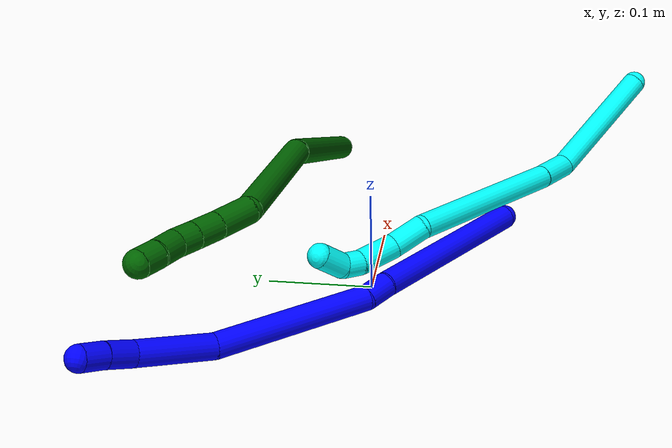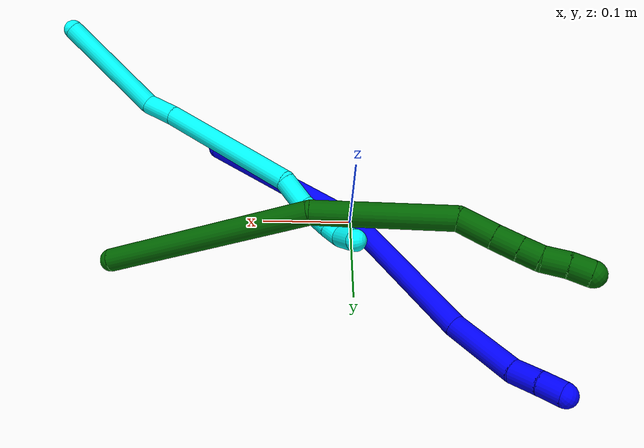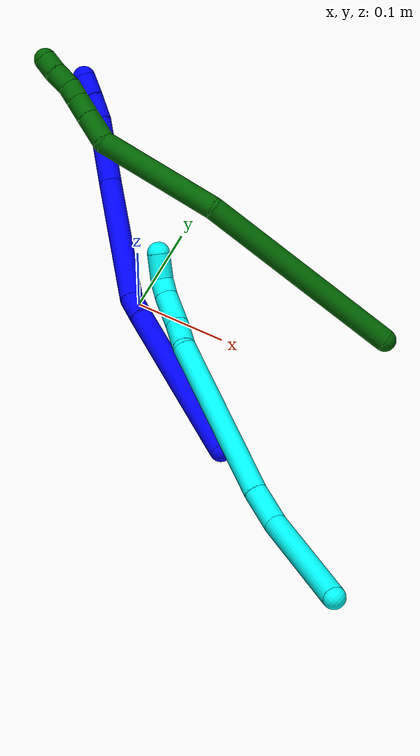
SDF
<sdf version="1.7">
 <world name="default">
  <model name="photoneo_s_sensor">
   <static>1</static>
   <pose>0 0 2 1.57079 1.57079 3.14159</pose>
   <link name="link">
    <inertial><mass>0.1</mass></inertial>
    <sensor name="sensor" type="depth">
     <update_rate>30</update_rate>
     <camera>
      <horizontal_fov>1.22</horizontal_fov>
      <image><width>1920</width><height>1200</height><format>B8G8R8</format></image>
      <clip><near>0.1</near><far>4</far></clip>
      <depth_camera><output>points</output></depth_camera>
     </camera>
     <plugin name="camera_plugin" filename="libgazebo_ros_depth_camera.so">
      <baseline>0.2</baseline>
      <alwaysOn>1</alwaysOn>
      <updateRate>0.0</updateRate>
      <cameraName>camera_ir</cameraName>
      <imageTopicName>/camera/color/image_raw</imageTopicName>
      <cameraInfoTopicName>/camera/color/camera_info</cameraInfoTopicName>
      <depthImageTopicName>/camera/depth/image_raw</depthImageTopicName>
      <depthImageCameraInfoTopicName>/camera/depth/camera_info</depthImageCameraInfoTopicName>
      <pointCloudTopicName>/camera/depth/points</pointCloudTopicName>
      <frameName>fr_optical</frameName>
      <pointCloudCutoff>0.1</pointCloudCutoff>
      <pointCloudCutoffMax>2.0</pointCloudCutoffMax>
      <distortionK1>0</distortionK1>
      <distortionK2>0</distortionK2>
      <distortionK3>0</distortionK3>
      <distortionT1>0</distortionT1>
      <distortionT2>0</distortionT2>
      <CxPrime>0</CxPrime>
      <Cx>0</Cx>
      <Cy>0</Cy>
      <focalLength>0</focalLength>
      <hackBaseline>0</hackBaseline>
     </plugin>
    </sensor>
   </link>
  </model>
  <model name="bin">
   <static>1</static>
   <link name="bottom">
    <collision name="collision-bottom">
     <pose>0 0 -0.01 0 -0 0</pose>
     <geometry><box><size>0.8 0.6 0.02</size></box></geometry>
     <surface>
      <friction><ode><mu>100</mu><mu2>100</mu2></ode></friction>
      <contact><collide_bitmask>65535</collide_bitmask></contact>
     </surface>
    </collision>
   </link>
   <link name="west_wall">
    <collision name="collision-west_wall">
     <pose>-0.41 0 0.1 0 -0 0</pose>
     <geometry><box><size>0.02 0.6 0.2</size></box></geometry>
     <surface>
      <friction><ode><mu>100</mu><mu2>100</mu2></ode></friction>
      <contact><collide_bitmask>65535</collide_bitmask></contact>
     </surface>
    </collision>
   </link>
   <link name="east_wall">
    <collision name="collision-east_wall">
     <pose>0.41 0 0.1 0 -0 0</pose>
     <geometry><box><size>0.02 0.6 0.2</size></box></geometry>
     <surface>
      <friction><ode><mu>100</mu><mu2>100</mu2></ode></friction>
      <contact><collide_bitmask>65535</collide_bitmask></contact>
     </surface>
    </collision>
   </link>
   <link name="south_wall">
    <collision name="collision-south_wall">
     <pose>0 -0.31 0.1 0 -0 0</pose>
     <geometry><box><size>0.8 0.02 0.2</size></box></geometry>
     <surface>
      <friction><ode><mu>100</mu><mu2>100</mu2></ode></friction>
      <contact><collide_bitmask>65535</collide_bitmask></contact>
     </surface>
    </collision>
   </link>
   <link name="north_wall">
    <collision name="collision-north_wall">
     <pose>0 0.31 0.1 0 -0 0</pose>
     <geometry><box><size>0.8 0.02 0.2</size></box></geometry>
     <surface>
      <friction><ode><mu>100</mu><mu2>100</mu2></ode></friction>
      <contact><collide_bitmask>65535</collide_bitmask></contact>
     </surface>
    </collision>
   </link>
  </model>
  <model name="1">
   <static>0</static>
   <link name="1">
    <collision name="collision-cylinder-e_1_1_4">
     <pose>-0.055642 0.040038 -0.063313 -2.57771 -0.638863 1.70309</pose>
     <geometry><cylinder><radius>0.0125</radius><length>0.186628</length></cylinder></geometry>
     <surface>
      <friction><ode><mu>1.16</mu><mu2>1.16</mu2><slip1>0</slip1><slip2>0</slip2></ode></friction>
      <contact><ode><kp>1e+06</kp><kd>1</kd><max_vel>0</max_vel><min_depth>0.001</min_depth></ode></contact>
     </surface>
    </collision>
    <visual name="visual-cylinder-e_1_1_4">
     <pose>-0.055642 0.040038 -0.063313 -2.57771 -0.638863 1.70309</pose>
     <geometry><cylinder><radius>0.0125</radius><length>0.186628</length></cylinder></geometry>
     <material><ambient>0 0 1 1</ambient></material>
    </visual>
    <collision name="collision-cylinder-e_2_4_5">
     <pose>-0.117568 0.086793 -0.136397 -2.53925 -0.487395 1.35005</pose>
     <geometry><cylinder><radius>0.0125</radius><length>0.026841</length></cylinder></geometry>
     <surface>
      <friction><ode><mu>1.16</mu><mu2>1.16</mu2><slip1>0</slip1><slip2>0</slip2></ode></friction>
      <contact><ode><kp>1e+06</kp><kd>1</kd><max_vel>0</max_vel><min_depth>0.001</min_depth></ode></contact>
     </surface>
    </collision>
    <visual name="visual-cylinder-e_2_4_5">
     <pose>-0.117568 0.086793 -0.136397 -2.53925 -0.487395 1.35005</pose>
     <geometry><cylinder><radius>0.0125</radius><length>0.026841</length></cylinder></geometry>
     <material><ambient>0 0 1 1</ambient></material>
    </visual>
    <collision name="collision-cylinder-e_3_5_6">
     <pose>-0.162953 0.147349 -0.187158 -2.22154 -0.523967 0.992094</pose>
     <geometry><cylinder><radius>0.0125</radius><length>0.1563</length></cylinder></geometry>
     <surface>
      <friction><ode><mu>1.16</mu><mu2>1.16</mu2><slip1>0</slip1><slip2>0</slip2></ode></friction>
      <contact><ode><kp>1e+06</kp><kd>1</kd><max_vel>0</max_vel><min_depth>0.001</min_depth></ode></contact>
     </surface>
    </collision>
    <visual name="visual-cylinder-e_3_5_6">
     <pose>-0.162953 0.147349 -0.187158 -2.22154 -0.523967 0.992094</pose>
     <geometry><cylinder><radius>0.0125</radius><length>0.1563</length></cylinder></geometry>
     <material><ambient>0 0 1 1</ambient></material>
    </visual>
    <collision name="collision-cylinder-e_4_6_7">
     <pose>-0.228575 0.225298 -0.242267 -2.10053 -0.759324 1.21613</pose>
     <geometry><cylinder><radius>0.0125</radius><length>0.077049</length></cylinder></geometry>
     <surface>
      <friction><ode><mu>1.16</mu><mu2>1.16</mu2><slip1>0</slip1><slip2>0</slip2></ode></friction>
      <contact><ode><kp>1e+06</kp><kd>1</kd><max_vel>0</max_vel><min_depth>0.001</min_depth></ode></contact>
     </surface>
    </collision>
    <visual name="visual-cylinder-e_4_6_7">
     <pose>-0.228575 0.225298 -0.242267 -2.10053 -0.759324 1.21613</pose>
     <geometry><cylinder><radius>0.0125</radius><length>0.077049</length></cylinder></geometry>
     <material><ambient>0 0 1 1</ambient></material>
    </visual>
    <collision name="collision-cylinder-e_5_7_8">
     <pose>-0.267094 0.255654 -0.261637 -2.2701 -0.973602 1.69867</pose>
     <geometry><cylinder><radius>0.0125</radius><length>0.029018</length></cylinder></geometry>
     <surface>
      <friction><ode><mu>1.16</mu><mu2>1.16</mu2><slip1>0</slip1><slip2>0</slip2></ode></friction>
      <contact><ode><kp>1e+06</kp><kd>1</kd><max_vel>0</max_vel><min_depth>0.001</min_depth></ode></contact>
     </surface>
    </collision>
    <visual name="visual-cylinder-e_5_7_8">
     <pose>-0.267094 0.255654 -0.261637 -2.2701 -0.973602 1.69867</pose>
     <geometry><cylinder><radius>0.0125</radius><length>0.029018</length></cylinder></geometry>
     <material><ambient>0 0 1 1</ambient></material>
    </visual>
    <collision name="collision-cylinder-e_6_8_2">
     <pose>-0.28866 0.267225 -0.271994 -2.33487 -0.913916 1.7119</pose>
     <geometry><cylinder><radius>0.0125</radius><length>0.024164</length></cylinder></geometry>
     <surface>
      <friction><ode><mu>1.16</mu><mu2>1.16</mu2><slip1>0</slip1><slip2>0</slip2></ode></friction>
      <contact><ode><kp>1e+06</kp><kd>1</kd><max_vel>0</max_vel><min_depth>0.001</min_depth></ode></contact>
     </surface>
    </collision>
    <visual name="visual-cylinder-e_6_8_2">
     <pose>-0.28866 0.267225 -0.271994 -2.33487 -0.913916 1.7119</pose>
     <geometry><cylinder><radius>0.0125</radius><length>0.024164</length></cylinder></geometry>
     <material><ambient>0 0 1 1</ambient></material>
    </visual>
    <collision name="collision-sphere-2">
     <pose>-0.298227 0.272552 -0.277098 0 -0 0</pose>
     <geometry><sphere><radius>0.0125</radius></sphere></geometry>
     <surface>
      <friction><ode><mu>1.16</mu><mu2>1.16</mu2><slip1>0</slip1><slip2>0</slip2></ode></friction>
      <contact><ode><kp>1e+06</kp><kd>1</kd><max_vel>0</max_vel><min_depth>0.001</min_depth></ode></contact>
     </surface>
    </collision>
    <visual name="visual-sphere-2">
     <pose>-0.298227 0.272552 -0.277098 0 -0 0</pose>
     <geometry><sphere><radius>0.0125</radius></sphere></geometry>
     <material><ambient>0 0 1 1</ambient></material>
    </visual>
    <collision name="collision-sphere-4">
     <pose>-0.111283 0.080075 -0.126626 0 -0 0</pose>
     <geometry><sphere><radius>0.0125</radius></sphere></geometry>
     <surface>
      <friction><ode><mu>1.16</mu><mu2>1.16</mu2><slip1>0</slip1><slip2>0</slip2></ode></friction>
      <contact><ode><kp>1e+06</kp><kd>1</kd><max_vel>0</max_vel><min_depth>0.001</min_depth></ode></contact>
     </surface>
    </collision>
    <visual name="visual-sphere-4">
     <pose>-0.111283 0.080075 -0.126626 0 -0 0</pose>
     <geometry><sphere><radius>0.0125</radius></sphere></geometry>
     <material><ambient>0 0 1 1</ambient></material>
    </visual>
    <collision name="collision-sphere-1">
     <geometry><sphere><radius>0.0125</radius></sphere></geometry>
     <surface>
      <friction><ode><mu>1.16</mu><mu2>1.16</mu2><slip1>0</slip1><slip2>0</slip2></ode></friction>
      <contact><ode><kp>1e+06</kp><kd>1</kd><max_vel>0</max_vel><min_depth>0.001</min_depth></ode></contact>
     </surface>
    </collision>
    <visual name="visual-sphere-1">
     <geometry><sphere><radius>0.0125</radius></sphere></geometry>
     <material><ambient>0 0 1 1</ambient></material>
    </visual>
    <collision name="collision-sphere-8">
     <pose>-0.279092 0.261898 -0.266889 0 -0 0</pose>
     <geometry><sphere><radius>0.0125</radius></sphere></geometry>
     <surface>
      <friction><ode><mu>1.16</mu><mu2>1.16</mu2><slip1>0</slip1><slip2>0</slip2></ode></friction>
      <contact><ode><kp>1e+06</kp><kd>1</kd><max_vel>0</max_vel><min_depth>0.001</min_depth></ode></contact>
     </surface>
    </collision>
    <visual name="visual-sphere-8">
     <pose>-0.279092 0.261898 -0.266889 0 -0 0</pose>
     <geometry><sphere><radius>0.0125</radius></sphere></geometry>
     <material><ambient>0 0 1 1</ambient></material>
    </visual>
    <collision name="collision-sphere-5">
     <pose>-0.123854 0.093512 -0.146168 0 -0 0</pose>
     <geometry><sphere><radius>0.0125</radius></sphere></geometry>
     <surface>
      <friction><ode><mu>1.16</mu><mu2>1.16</mu2><slip1>0</slip1><slip2>0</slip2></ode></friction>
      <contact><ode><kp>1e+06</kp><kd>1</kd><max_vel>0</max_vel><min_depth>0.001</min_depth></ode></contact>
     </surface>
    </collision>
    <visual name="visual-sphere-5">
     <pose>-0.123854 0.093512 -0.146168 0 -0 0</pose>
     <geometry><sphere><radius>0.0125</radius></sphere></geometry>
     <material><ambient>0 0 1 1</ambient></material>
    </visual>
    <collision name="collision-sphere-6">
     <pose>-0.202053 0.201186 -0.228148 0 -0 0</pose>
     <geometry><sphere><radius>0.0125</radius></sphere></geometry>
     <surface>
      <friction><ode><mu>1.16</mu><mu2>1.16</mu2><slip1>0</slip1><slip2>0</slip2></ode></friction>
      <contact><ode><kp>1e+06</kp><kd>1</kd><max_vel>0</max_vel><min_depth>0.001</min_depth></ode></contact>
     </surface>
    </collision>
    <visual name="visual-sphere-6">
     <pose>-0.202053 0.201186 -0.228148 0 -0 0</pose>
     <geometry><sphere><radius>0.0125</radius></sphere></geometry>
     <material><ambient>0 0 1 1</ambient></material>
    </visual>
    <collision name="collision-sphere-7">
     <pose>-0.255096 0.24941 -0.256386 0 -0 0</pose>
     <geometry><sphere><radius>0.0125</radius></sphere></geometry>
     <surface>
      <friction><ode><mu>1.16</mu><mu2>1.16</mu2><slip1>0</slip1><slip2>0</slip2></ode></friction>
      <contact><ode><kp>1e+06</kp><kd>1</kd><max_vel>0</max_vel><min_depth>0.001</min_depth></ode></contact>
     </surface>
    </collision>
    <visual name="visual-sphere-7">
     <pose>-0.255096 0.24941 -0.256386 0 -0 0</pose>
     <geometry><sphere><radius>0.0125</radius></sphere></geometry>
     <material><ambient>0 0 1 1</ambient></material>
    </visual>
    <inertial>
     <pose>-0.142693 0.128134 -0.155122 0 -0 0</pose>
     <mass>0.5</mass>
     <inertia>
      <ixx>0.000788</ixx>
      <ixy>0</ixy>
      <ixz>0</ixz>
      <iyy>0.000981</iyy>
      <iyz>0</iyz>
      <izz>1.3e-05</izz>
     </inertia>
    </inertial>
   </link>
   <pose>0.161494 -0.120119 -0.005364 -0.249536 0.93156 -0.362237</pose>
  </model>
  <model name="3">
   <static>0</static>
   <link name="3">
    <collision name="collision-cylinder-e_1_1_4">
     <pose>0.045143 0.032458 -0.044565 -2.51211 0.68611 -1.66333</pose>
     <geometry><cylinder><radius>0.0125</radius><length>0.142513</length></cylinder></geometry>
     <surface>
      <friction><ode><mu>1.16</mu><mu2>1.16</mu2><slip1>0</slip1><slip2>0</slip2></ode></friction>
      <contact><ode><kp>1e+06</kp><kd>1</kd><max_vel>0</max_vel><min_depth>0.001</min_depth></ode></contact>
     </surface>
    </collision>
    <visual name="visual-cylinder-e_1_1_4">
     <pose>0.045143 0.032458 -0.044565 -2.51211 0.68611 -1.66333</pose>
     <geometry><cylinder><radius>0.0125</radius><length>0.142513</length></cylinder></geometry>
     <material><ambient>0.003922 1 0.996078 1</ambient></material>
    </visual>
    <collision name="collision-cylinder-e_2_4_5">
     <pose>0.095356 0.073518 -0.10804 -2.71467 0.239338 -1.01293</pose>
     <geometry><cylinder><radius>0.0125</radius><length>0.042767</length></cylinder></geometry>
     <surface>
      <friction><ode><mu>1.16</mu><mu2>1.16</mu2><slip1>0</slip1><slip2>0</slip2></ode></friction>
      <contact><ode><kp>1e+06</kp><kd>1</kd><max_vel>0</max_vel><min_depth>0.001</min_depth></ode></contact>
     </surface>
    </collision>
    <visual name="visual-cylinder-e_2_4_5">
     <pose>0.095356 0.073518 -0.10804 -2.71467 0.239338 -1.01293</pose>
     <geometry><cylinder><radius>0.0125</radius><length>0.042767</length></cylinder></geometry>
     <material><ambient>0.003922 1 0.996078 1</ambient></material>
    </visual>
    <collision name="collision-cylinder-e_3_5_6">
     <pose>0.119198 0.126822 -0.206965 -2.63212 0.202021 -0.742392</pose>
     <geometry><cylinder><radius>0.0125</radius><length>0.187118</length></cylinder></geometry>
     <surface>
      <friction><ode><mu>1.16</mu><mu2>1.16</mu2><slip1>0</slip1><slip2>0</slip2></ode></friction>
      <contact><ode><kp>1e+06</kp><kd>1</kd><max_vel>0</max_vel><min_depth>0.001</min_depth></ode></contact>
     </surface>
    </collision>
    <visual name="visual-cylinder-e_3_5_6">
     <pose>0.119198 0.126822 -0.206965 -2.63212 0.202021 -0.742392</pose>
     <geometry><cylinder><radius>0.0125</radius><length>0.187118</length></cylinder></geometry>
     <material><ambient>0.003922 1 0.996078 1</ambient></material>
    </visual>
    <collision name="collision-cylinder-e_4_6_7">
     <pose>0.146616 0.183367 -0.297833 -2.31256 0.49378 -1.04033</pose>
     <geometry><cylinder><radius>0.0125</radius><length>0.036484</length></cylinder></geometry>
     <surface>
      <friction><ode><mu>1.16</mu><mu2>1.16</mu2><slip1>0</slip1><slip2>0</slip2></ode></friction>
      <contact><ode><kp>1e+06</kp><kd>1</kd><max_vel>0</max_vel><min_depth>0.001</min_depth></ode></contact>
     </surface>
    </collision>
    <visual name="visual-cylinder-e_4_6_7">
     <pose>0.146616 0.183367 -0.297833 -2.31256 0.49378 -1.04033</pose>
     <geometry><cylinder><radius>0.0125</radius><length>0.036484</length></cylinder></geometry>
     <material><ambient>0.003922 1 0.996078 1</ambient></material>
    </visual>
    <collision name="collision-cylinder-e_5_7_8">
     <pose>0.161739 0.207269 -0.324064 -2.47662 0.320022 -0.87444</pose>
     <geometry><cylinder><radius>0.0125</radius><length>0.041176</length></cylinder></geometry>
     <surface>
      <friction><ode><mu>1.16</mu><mu2>1.16</mu2><slip1>0</slip1><slip2>0</slip2></ode></friction>
      <contact><ode><kp>1e+06</kp><kd>1</kd><max_vel>0</max_vel><min_depth>0.001</min_depth></ode></contact>
     </surface>
    </collision>
    <visual name="visual-cylinder-e_5_7_8">
     <pose>0.161739 0.207269 -0.324064 -2.47662 0.320022 -0.87444</pose>
     <geometry><cylinder><radius>0.0125</radius><length>0.041176</length></cylinder></geometry>
     <material><ambient>0.003922 1 0.996078 1</ambient></material>
    </visual>
    <collision name="collision-cylinder-e_6_8_9">
     <pose>0.168836 0.225348 -0.347479 -2.49863 0.061696 -0.184786</pose>
     <geometry><cylinder><radius>0.0125</radius><length>0.020121</length></cylinder></geometry>
     <surface>
      <friction><ode><mu>1.16</mu><mu2>1.16</mu2><slip1>0</slip1><slip2>0</slip2></ode></friction>
      <contact><ode><kp>1e+06</kp><kd>1</kd><max_vel>0</max_vel><min_depth>0.001</min_depth></ode></contact>
     </surface>
    </collision>
    <visual name="visual-cylinder-e_6_8_9">
     <pose>0.168836 0.225348 -0.347479 -2.49863 0.061696 -0.184786</pose>
     <geometry><cylinder><radius>0.0125</radius><length>0.020121</length></cylinder></geometry>
     <material><ambient>0.003922 1 0.996078 1</ambient></material>
    </visual>
    <collision name="collision-cylinder-e_7_9_2">
     <pose>0.1631 0.238511 -0.366957 -2.58353 -0.440364 1.32631</pose>
     <geometry><cylinder><radius>0.0125</radius><length>0.029821</length></cylinder></geometry>
     <surface>
      <friction><ode><mu>1.16</mu><mu2>1.16</mu2><slip1>0</slip1><slip2>0</slip2></ode></friction>
      <contact><ode><kp>1e+06</kp><kd>1</kd><max_vel>0</max_vel><min_depth>0.001</min_depth></ode></contact>
     </surface>
    </collision>
    <visual name="visual-cylinder-e_7_9_2">
     <pose>0.1631 0.238511 -0.366957 -2.58353 -0.440364 1.32631</pose>
     <geometry><cylinder><radius>0.0125</radius><length>0.029821</length></cylinder></geometry>
     <material><ambient>0.003922 1 0.996078 1</ambient></material>
    </visual>
    <collision name="collision-sphere-2">
     <pose>0.156744 0.245653 -0.378399 0 -0 0</pose>
     <geometry><sphere><radius>0.0125</radius></sphere></geometry>
     <surface>
      <friction><ode><mu>1.16</mu><mu2>1.16</mu2><slip1>0</slip1><slip2>0</slip2></ode></friction>
      <contact><ode><kp>1e+06</kp><kd>1</kd><max_vel>0</max_vel><min_depth>0.001</min_depth></ode></contact>
     </surface>
    </collision>
    <visual name="visual-sphere-2">
     <pose>0.156744 0.245653 -0.378399 0 -0 0</pose>
     <geometry><sphere><radius>0.0125</radius></sphere></geometry>
     <material><ambient>0.003922 1 0.996078 1</ambient></material>
    </visual>
    <collision name="collision-sphere-9">
     <pose>0.169456 0.231368 -0.355515 0 -0 0</pose>
     <geometry><sphere><radius>0.0125</radius></sphere></geometry>
     <surface>
      <friction><ode><mu>1.16</mu><mu2>1.16</mu2><slip1>0</slip1><slip2>0</slip2></ode></friction>
      <contact><ode><kp>1e+06</kp><kd>1</kd><max_vel>0</max_vel><min_depth>0.001</min_depth></ode></contact>
     </surface>
    </collision>
    <visual name="visual-sphere-9">
     <pose>0.169456 0.231368 -0.355515 0 -0 0</pose>
     <geometry><sphere><radius>0.0125</radius></sphere></geometry>
     <material><ambient>0.003922 1 0.996078 1</ambient></material>
    </visual>
    <collision name="collision-sphere-4">
     <pose>0.090287 0.064916 -0.08913 0 -0 0</pose>
     <geometry><sphere><radius>0.0125</radius></sphere></geometry>
     <surface>
      <friction><ode><mu>1.16</mu><mu2>1.16</mu2><slip1>0</slip1><slip2>0</slip2></ode></friction>
      <contact><ode><kp>1e+06</kp><kd>1</kd><max_vel>0</max_vel><min_depth>0.001</min_depth></ode></contact>
     </surface>
    </collision>
    <visual name="visual-sphere-4">
     <pose>0.090287 0.064916 -0.08913 0 -0 0</pose>
     <geometry><sphere><radius>0.0125</radius></sphere></geometry>
     <material><ambient>0.003922 1 0.996078 1</ambient></material>
    </visual>
    <collision name="collision-sphere-1">
     <geometry><sphere><radius>0.0125</radius></sphere></geometry>
     <surface>
      <friction><ode><mu>1.16</mu><mu2>1.16</mu2><slip1>0</slip1><slip2>0</slip2></ode></friction>
      <contact><ode><kp>1e+06</kp><kd>1</kd><max_vel>0</max_vel><min_depth>0.001</min_depth></ode></contact>
     </surface>
    </collision>
    <visual name="visual-sphere-1">
     <geometry><sphere><radius>0.0125</radius></sphere></geometry>
     <material><ambient>0.003922 1 0.996078 1</ambient></material>
    </visual>
    <collision name="collision-sphere-8">
     <pose>0.168216 0.219327 -0.339443 0 -0 0</pose>
     <geometry><sphere><radius>0.0125</radius></sphere></geometry>
     <surface>
      <friction><ode><mu>1.16</mu><mu2>1.16</mu2><slip1>0</slip1><slip2>0</slip2></ode></friction>
      <contact><ode><kp>1e+06</kp><kd>1</kd><max_vel>0</max_vel><min_depth>0.001</min_depth></ode></contact>
     </surface>
    </collision>
    <visual name="visual-sphere-8">
     <pose>0.168216 0.219327 -0.339443 0 -0 0</pose>
     <geometry><sphere><radius>0.0125</radius></sphere></geometry>
     <material><ambient>0.003922 1 0.996078 1</ambient></material>
    </visual>
    <collision name="collision-sphere-5">
     <pose>0.100425 0.08212 -0.126949 0 -0 0</pose>
     <geometry><sphere><radius>0.0125</radius></sphere></geometry>
     <surface>
      <friction><ode><mu>1.16</mu><mu2>1.16</mu2><slip1>0</slip1><slip2>0</slip2></ode></friction>
      <contact><ode><kp>1e+06</kp><kd>1</kd><max_vel>0</max_vel><min_depth>0.001</min_depth></ode></contact>
     </surface>
    </collision>
    <visual name="visual-sphere-5">
     <pose>0.100425 0.08212 -0.126949 0 -0 0</pose>
     <geometry><sphere><radius>0.0125</radius></sphere></geometry>
     <material><ambient>0.003922 1 0.996078 1</ambient></material>
    </visual>
    <collision name="collision-sphere-6">
     <pose>0.13797 0.171524 -0.286981 0 -0 0</pose>
     <geometry><sphere><radius>0.0125</radius></sphere></geometry>
     <surface>
      <friction><ode><mu>1.16</mu><mu2>1.16</mu2><slip1>0</slip1><slip2>0</slip2></ode></friction>
      <contact><ode><kp>1e+06</kp><kd>1</kd><max_vel>0</max_vel><min_depth>0.001</min_depth></ode></contact>
     </surface>
    </collision>
    <visual name="visual-sphere-6">
     <pose>0.13797 0.171524 -0.286981 0 -0 0</pose>
     <geometry><sphere><radius>0.0125</radius></sphere></geometry>
     <material><ambient>0.003922 1 0.996078 1</ambient></material>
    </visual>
    <collision name="collision-sphere-7">
     <pose>0.155262 0.19521 -0.308685 0 -0 0</pose>
     <geometry><sphere><radius>0.0125</radius></sphere></geometry>
     <surface>
      <friction><ode><mu>1.16</mu><mu2>1.16</mu2><slip1>0</slip1><slip2>0</slip2></ode></friction>
      <contact><ode><kp>1e+06</kp><kd>1</kd><max_vel>0</max_vel><min_depth>0.001</min_depth></ode></contact>
     </surface>
    </collision>
    <visual name="visual-sphere-7">
     <pose>0.155262 0.19521 -0.308685 0 -0 0</pose>
     <geometry><sphere><radius>0.0125</radius></sphere></geometry>
     <material><ambient>0.003922 1 0.996078 1</ambient></material>
    </visual>
    <inertial>
     <pose>0.106171 0.116744 -0.183686 0 -0 0</pose>
     <mass>0.5</mass>
     <inertia>
      <ixx>-0.000163</ixx>
      <ixy>0</ixy>
      <ixz>0</ixz>
      <iyy>-0.000767</iyy>
      <iyz>0</iyz>
      <izz>-0.000693</izz>
     </inertia>
    </inertial>
   </link>
   <pose>0.360623 -0.259683 0.070685 -2.85995 1.19502 -3.04831</pose>
  </model>
  <model name="6">
   <static>0</static>
   <link name="6">
    <collision name="collision-cylinder-e_1_1_4">
     <pose>-0.053682 -0.016431 -0.102299 2.98233 -0.478033 -2.50864</pose>
     <geometry><cylinder><radius>0.0125</radius><length>0.233382</length></cylinder></geometry>
     <surface>
      <friction><ode><mu>1.16</mu><mu2>1.16</mu2><slip1>0</slip1><slip2>0</slip2></ode></friction>
      <contact><ode><kp>1e+06</kp><kd>1</kd><max_vel>0</max_vel><min_depth>0.001</min_depth></ode></contact>
     </surface>
    </collision>
    <visual name="visual-cylinder-e_1_1_4">
     <pose>-0.053682 -0.016431 -0.102299 2.98233 -0.478033 -2.50864</pose>
     <geometry><cylinder><radius>0.0125</radius><length>0.233382</length></cylinder></geometry>
     <material><ambient>0 0.392157 0.003922 1</ambient></material>
    </visual>
    <collision name="collision-cylinder-e_2_4_5">
     <pose>-0.157376 -0.031203 -0.254091 -3.10808 -0.790334 3.06128</pose>
     <geometry><cylinder><radius>0.0125</radius><length>0.140763</length></cylinder></geometry>
     <surface>
      <friction><ode><mu>1.16</mu><mu2>1.16</mu2><slip1>0</slip1><slip2>0</slip2></ode></friction>
      <contact><ode><kp>1e+06</kp><kd>1</kd><max_vel>0</max_vel><min_depth>0.001</min_depth></ode></contact>
     </surface>
    </collision>
    <visual name="visual-cylinder-e_2_4_5">
     <pose>-0.157376 -0.031203 -0.254091 -3.10808 -0.790334 3.06128</pose>
     <geometry><cylinder><radius>0.0125</radius><length>0.140763</length></cylinder></geometry>
     <material><ambient>0 0.392157 0.003922 1</ambient></material>
    </visual>
    <collision name="collision-cylinder-e_3_5_6">
     <pose>-0.223588 -0.03523 -0.310288 2.4381 -1.07366 -2.0364</pose>
     <geometry><cylinder><radius>0.0125</radius><length>0.036862</length></cylinder></geometry>
     <surface>
      <friction><ode><mu>1.16</mu><mu2>1.16</mu2><slip1>0</slip1><slip2>0</slip2></ode></friction>
      <contact><ode><kp>1e+06</kp><kd>1</kd><max_vel>0</max_vel><min_depth>0.001</min_depth></ode></contact>
     </surface>
    </collision>
    <visual name="visual-cylinder-e_3_5_6">
     <pose>-0.223588 -0.03523 -0.310288 2.4381 -1.07366 -2.0364</pose>
     <geometry><cylinder><radius>0.0125</radius><length>0.036862</length></cylinder></geometry>
     <material><ambient>0 0.392157 0.003922 1</ambient></material>
    </visual>
    <collision name="collision-cylinder-e_4_6_7">
     <pose>-0.250559 -0.045071 -0.321963 2.44557 -1.02921 -2.00069</pose>
     <geometry><cylinder><radius>0.0125</radius><length>0.02514</length></cylinder></geometry>
     <surface>
      <friction><ode><mu>1.16</mu><mu2>1.16</mu2><slip1>0</slip1><slip2>0</slip2></ode></friction>
      <contact><ode><kp>1e+06</kp><kd>1</kd><max_vel>0</max_vel><min_depth>0.001</min_depth></ode></contact>
     </surface>
    </collision>
    <visual name="visual-cylinder-e_4_6_7">
     <pose>-0.250559 -0.045071 -0.321963 2.44557 -1.02921 -2.00069</pose>
     <geometry><cylinder><radius>0.0125</radius><length>0.02514</length></cylinder></geometry>
     <material><ambient>0 0.392157 0.003922 1</ambient></material>
    </visual>
    <collision name="collision-cylinder-e_5_7_8">
     <pose>-0.269815 -0.052621 -0.331034 2.44967 -1.01058 -1.9866</pose>
     <geometry><cylinder><radius>0.0125</radius><length>0.020032</length></cylinder></geometry>
     <surface>
      <friction><ode><mu>1.16</mu><mu2>1.16</mu2><slip1>0</slip1><slip2>0</slip2></ode></friction>
      <contact><ode><kp>1e+06</kp><kd>1</kd><max_vel>0</max_vel><min_depth>0.001</min_depth></ode></contact>
     </surface>
    </collision>
    <visual name="visual-cylinder-e_5_7_8">
     <pose>-0.269815 -0.052621 -0.331034 2.44967 -1.01058 -1.9866</pose>
     <geometry><cylinder><radius>0.0125</radius><length>0.020032</length></cylinder></geometry>
     <material><ambient>0 0.392157 0.003922 1</ambient></material>
    </visual>
    <collision name="collision-cylinder-e_6_8_9">
     <pose>-0.287551 -0.058261 -0.342014 2.82637 -0.906829 -2.51103</pose>
     <geometry><cylinder><radius>0.0125</radius><length>0.023492</length></cylinder></geometry>
     <surface>
      <friction><ode><mu>1.16</mu><mu2>1.16</mu2><slip1>0</slip1><slip2>0</slip2></ode></friction>
      <contact><ode><kp>1e+06</kp><kd>1</kd><max_vel>0</max_vel><min_depth>0.001</min_depth></ode></contact>
     </surface>
    </collision>
    <visual name="visual-cylinder-e_6_8_9">
     <pose>-0.287551 -0.058261 -0.342014 2.82637 -0.906829 -2.51103</pose>
     <geometry><cylinder><radius>0.0125</radius><length>0.023492</length></cylinder></geometry>
     <material><ambient>0 0.392157 0.003922 1</ambient></material>
    </visual>
    <collision name="collision-cylinder-e_7_9_2">
     <pose>-0.30535 -0.063192 -0.353693 2.63092 -0.999264 -2.24941</pose>
     <geometry><cylinder><radius>0.0125</radius><length>0.020329</length></cylinder></geometry>
     <surface>
      <friction><ode><mu>1.16</mu><mu2>1.16</mu2><slip1>0</slip1><slip2>0</slip2></ode></friction>
      <contact><ode><kp>1e+06</kp><kd>1</kd><max_vel>0</max_vel><min_depth>0.001</min_depth></ode></contact>
     </surface>
    </collision>
    <visual name="visual-cylinder-e_7_9_2">
     <pose>-0.30535 -0.063192 -0.353693 2.63092 -0.999264 -2.24941</pose>
     <geometry><cylinder><radius>0.0125</radius><length>0.020329</length></cylinder></geometry>
     <material><ambient>0 0.392157 0.003922 1</ambient></material>
    </visual>
    <collision name="collision-sphere-2">
     <pose>-0.313899 -0.06588 -0.358489 0 -0 0</pose>
     <geometry><sphere><radius>0.0125</radius></sphere></geometry>
     <surface>
      <friction><ode><mu>1.16</mu><mu2>1.16</mu2><slip1>0</slip1><slip2>0</slip2></ode></friction>
      <contact><ode><kp>1e+06</kp><kd>1</kd><max_vel>0</max_vel><min_depth>0.001</min_depth></ode></contact>
     </surface>
    </collision>
    <visual name="visual-sphere-2">
     <pose>-0.313899 -0.06588 -0.358489 0 -0 0</pose>
     <geometry><sphere><radius>0.0125</radius></sphere></geometry>
     <material><ambient>0 0.392157 0.003922 1</ambient></material>
    </visual>
    <collision name="collision-sphere-9">
     <pose>-0.296801 -0.060505 -0.348896 0 -0 0</pose>
     <geometry><sphere><radius>0.0125</radius></sphere></geometry>
     <surface>
      <friction><ode><mu>1.16</mu><mu2>1.16</mu2><slip1>0</slip1><slip2>0</slip2></ode></friction>
      <contact><ode><kp>1e+06</kp><kd>1</kd><max_vel>0</max_vel><min_depth>0.001</min_depth></ode></contact>
     </surface>
    </collision>
    <visual name="visual-sphere-9">
     <pose>-0.296801 -0.060505 -0.348896 0 -0 0</pose>
     <geometry><sphere><radius>0.0125</radius></sphere></geometry>
     <material><ambient>0 0.392157 0.003922 1</ambient></material>
    </visual>
    <collision name="collision-sphere-4">
     <pose>-0.107364 -0.032863 -0.204598 0 -0 0</pose>
     <geometry><sphere><radius>0.0125</radius></sphere></geometry>
     <surface>
      <friction><ode><mu>1.16</mu><mu2>1.16</mu2><slip1>0</slip1><slip2>0</slip2></ode></friction>
      <contact><ode><kp>1e+06</kp><kd>1</kd><max_vel>0</max_vel><min_depth>0.001</min_depth></ode></contact>
     </surface>
    </collision>
    <visual name="visual-sphere-4">
     <pose>-0.107364 -0.032863 -0.204598 0 -0 0</pose>
     <geometry><sphere><radius>0.0125</radius></sphere></geometry>
     <material><ambient>0 0.392157 0.003922 1</ambient></material>
    </visual>
    <collision name="collision-sphere-1">
     <geometry><sphere><radius>0.0125</radius></sphere></geometry>
     <surface>
      <friction><ode><mu>1.16</mu><mu2>1.16</mu2><slip1>0</slip1><slip2>0</slip2></ode></friction>
      <contact><ode><kp>1e+06</kp><kd>1</kd><max_vel>0</max_vel><min_depth>0.001</min_depth></ode></contact>
     </surface>
    </collision>
    <visual name="visual-sphere-1">
     <geometry><sphere><radius>0.0125</radius></sphere></geometry>
     <material><ambient>0 0.392157 0.003922 1</ambient></material>
    </visual>
    <collision name="collision-sphere-8">
     <pose>-0.2783 -0.056017 -0.335132 0 -0 0</pose>
     <geometry><sphere><radius>0.0125</radius></sphere></geometry>
     <surface>
      <friction><ode><mu>1.16</mu><mu2>1.16</mu2><slip1>0</slip1><slip2>0</slip2></ode></friction>
      <contact><ode><kp>1e+06</kp><kd>1</kd><max_vel>0</max_vel><min_depth>0.001</min_depth></ode></contact>
     </surface>
    </collision>
    <visual name="visual-sphere-8">
     <pose>-0.2783 -0.056017 -0.335132 0 -0 0</pose>
     <geometry><sphere><radius>0.0125</radius></sphere></geometry>
     <material><ambient>0 0.392157 0.003922 1</ambient></material>
    </visual>
    <collision name="collision-sphere-5">
     <pose>-0.207388 -0.029544 -0.303585 0 -0 0</pose>
     <geometry><sphere><radius>0.0125</radius></sphere></geometry>
     <surface>
      <friction><ode><mu>1.16</mu><mu2>1.16</mu2><slip1>0</slip1><slip2>0</slip2></ode></friction>
      <contact><ode><kp>1e+06</kp><kd>1</kd><max_vel>0</max_vel><min_depth>0.001</min_depth></ode></contact>
     </surface>
    </collision>
    <visual name="visual-sphere-5">
     <pose>-0.207388 -0.029544 -0.303585 0 -0 0</pose>
     <geometry><sphere><radius>0.0125</radius></sphere></geometry>
     <material><ambient>0 0.392157 0.003922 1</ambient></material>
    </visual>
    <collision name="collision-sphere-6">
     <pose>-0.239788 -0.040916 -0.316991 0 -0 0</pose>
     <geometry><sphere><radius>0.0125</radius></sphere></geometry>
     <surface>
      <friction><ode><mu>1.16</mu><mu2>1.16</mu2><slip1>0</slip1><slip2>0</slip2></ode></friction>
      <contact><ode><kp>1e+06</kp><kd>1</kd><max_vel>0</max_vel><min_depth>0.001</min_depth></ode></contact>
     </surface>
    </collision>
    <visual name="visual-sphere-6">
     <pose>-0.239788 -0.040916 -0.316991 0 -0 0</pose>
     <geometry><sphere><radius>0.0125</radius></sphere></geometry>
     <material><ambient>0 0.392157 0.003922 1</ambient></material>
    </visual>
    <collision name="collision-sphere-7">
     <pose>-0.261331 -0.049226 -0.326936 0 -0 0</pose>
     <geometry><sphere><radius>0.0125</radius></sphere></geometry>
     <surface>
      <friction><ode><mu>1.16</mu><mu2>1.16</mu2><slip1>0</slip1><slip2>0</slip2></ode></friction>
      <contact><ode><kp>1e+06</kp><kd>1</kd><max_vel>0</max_vel><min_depth>0.001</min_depth></ode></contact>
     </surface>
    </collision>
    <visual name="visual-sphere-7">
     <pose>-0.261331 -0.049226 -0.326936 0 -0 0</pose>
     <geometry><sphere><radius>0.0125</radius></sphere></geometry>
     <material><ambient>0 0.392157 0.003922 1</ambient></material>
    </visual>
    <inertial>
     <pose>-0.135179 -0.028732 -0.202059 0 -0 0</pose>
     <mass>0.5</mass>
     <inertia>
      <ixx>-0.001513</ixx>
      <ixy>0</ixy>
      <ixz>0</ixz>
      <iyy>0.000587</iyy>
      <iyz>0</iyz>
      <izz>0.000792</izz>
     </inertia>
    </inertial>
   </link>
   <pose>0.261407 0.070283 0.017417 -2.36792 -0.489922 -0.638455</pose>
  </model>
 </world>
</sdf>
